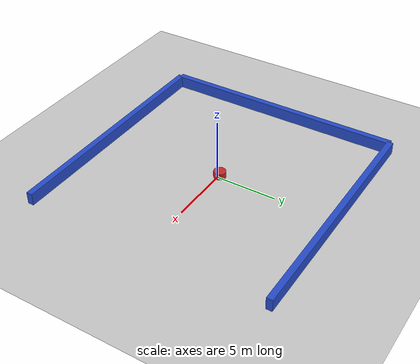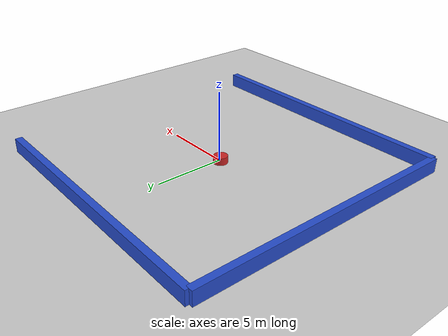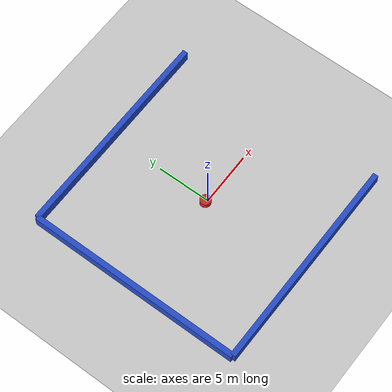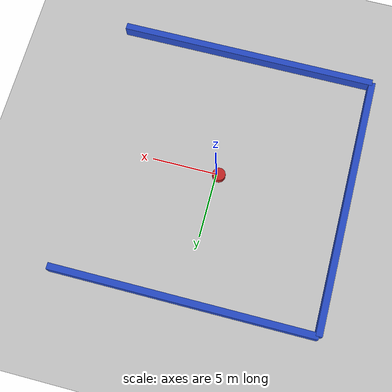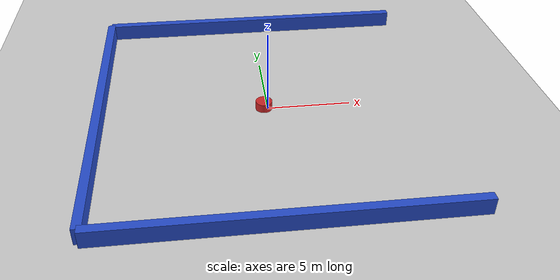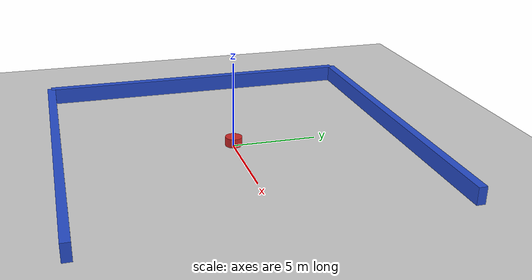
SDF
<?xml version="1.0" ?>
<sdf version="1.6">
   <world name="default">
    <model name="ground_plane">
      <static>1</static>
      <link name="link">
        <collision name="collision">
          <geometry><plane><normal>0 0 1</normal><size>100 100</size></plane></geometry>
          <surface><friction><ode><mu>100</mu><mu2>50</mu2></ode><torsional><ode/></torsional></friction><contact><ode/></contact></surface>
        </collision>
        <visual name="visual">
          <cast_shadows>0</cast_shadows>
          <geometry><plane><normal>0 0 1</normal><size>100 100</size></plane></geometry>
          <material><ambient>0.8 0.8 0.8 1</ambient><diffuse>0.8 0.8 0.8 1</diffuse><specular>0.01 0.01 0.01 1</specular></material>
        </visual>
      </link>
    </model>
    <light name="sun" type="directional">
      <cast_shadows>1</cast_shadows>
      <pose>0 0 10 0 0 0</pose>
      <diffuse>1 1 1 1</diffuse>
      <specular>0.1 0.1 0.1 1</specular>
      <attenuation><range>1000</range><constant>0.9</constant><linear>0.01</linear><quadratic>0.001</quadratic></attenuation>
      <direction>-0.5 0.5 -1</direction>
    </light>

    <model name='easylibobs_195'>
      <static>1</static>
      <pose frame=''>-0.225000 0.075000 0.000000 0.000000 0.000000 0.000000</pose>
      <link name='link'>
        <inertial>
          <mass>1</mass>
          <inertia>
            <ixx>0.145833</ixx>
            <ixy>0</ixy>
            <ixz>0</ixz>
            <iyy>0.145833</iyy>
            <iyz>0</iyz>
            <izz>0.125</izz>
          </inertia>
        </inertial>
        <collision name='collision'>
           <geometry>
            <cylinder>
                <radius>0.5000</radius>
                 <length> 1 </length>
            </cylinder>
          </geometry>
           <surface>
            <contact>
              <ode/>
            </contact>
            <bounce/>
            <friction>
              <torsional>
                <ode/>
              </torsional>
              <ode/>
            </friction>
          </surface>
        </collision>
        <visual name='visual'>
           <geometry>
            <cylinder>
                <radius>0.5000</radius>
                 <length> 1 </length>
            </cylinder>
          </geometry>
          <material>
            <script>
              <name>Gazebo/Red</name>
              <uri>file://media/materials/scripts/gazebo.material</uri>
            </script>
          </material>
        </visual>
        <self_collide>0</self_collide>
        <kinematic>0</kinematic>
        <gravity>1</gravity>
      </link>
      <plugin name='easylibobs_195' filename='easylibobs_195.so'/>
    </model>

    <model name='easylibobs_2'>
      <static>1</static>
      <pose frame=''>-0.225000 0.075000 0.000000 0.000000 0.000000 0.000000</pose>
      <link name='link'>
        <inertial>
          <mass>1</mass>
          <inertia>
            <ixx>0.145833</ixx>
            <ixy>0</ixy>
            <ixz>0</ixz>
            <iyy>0.145833</iyy>
            <iyz>0</iyz>
            <izz>0.125</izz>
          </inertia>
        </inertial>
        <collision name='collision'>
           <geometry>
            <cylinder>
                <radius>0.5000</radius>
                 <length> 1 </length>
            </cylinder>
          </geometry>
           <surface>
            <contact>
              <ode/>
            </contact>
            <bounce/>
            <friction>
              <torsional>
                <ode/>
              </torsional>
              <ode/>
            </friction>
          </surface>
        </collision>
        <visual name='visual'>
           <geometry>
            <cylinder>
                <radius>0.5000</radius>
                 <length> 1 </length>
            </cylinder>
          </geometry>
          <material>
            <script>
              <name>Gazebo/Red</name>
              <uri>file://media/materials/scripts/gazebo.material</uri>
            </script>
          </material>
        </visual>
        <self_collide>0</self_collide>
        <kinematic>0</kinematic>
        <gravity>1</gravity>
      </link>
      <plugin name='easylibobs_2' filename='easylibobs_2.so'/>
    </model>

    <model name='easylibobs_186'>
      <static>1</static>
      <pose frame=''>-0.225000 0.075000 0.000000 0.000000 0.000000 0.000000</pose>
      <link name='link'>
        <inertial>
          <mass>1</mass>
          <inertia>
            <ixx>0.145833</ixx>
            <ixy>0</ixy>
            <ixz>0</ixz>
            <iyy>0.145833</iyy>
            <iyz>0</iyz>
            <izz>0.125</izz>
          </inertia>
        </inertial>
        <collision name='collision'>
           <geometry>
            <cylinder>
                <radius>0.5000</radius>
                 <length> 1 </length>
            </cylinder>
          </geometry>
           <surface>
            <contact>
              <ode/>
            </contact>
            <bounce/>
            <friction>
              <torsional>
                <ode/>
              </torsional>
              <ode/>
            </friction>
          </surface>
        </collision>
        <visual name='visual'>
           <geometry>
            <cylinder>
                <radius>0.5000</radius>
                 <length> 1 </length>
            </cylinder>
          </geometry>
          <material>
            <script>
              <name>Gazebo/Red</name>
              <uri>file://media/materials/scripts/gazebo.material</uri>
            </script>
          </material>
        </visual>
        <self_collide>0</self_collide>
        <kinematic>0</kinematic>
        <gravity>1</gravity>
      </link>
      <plugin name='easylibobs_186' filename='easylibobs_186.so'/>
    </model>

    <model name='easylibobs_198'>
      <static>1</static>
      <pose frame=''>-0.225000 0.075000 0.000000 0.000000 0.000000 0.000000</pose>
      <link name='link'>
        <inertial>
          <mass>1</mass>
          <inertia>
            <ixx>0.145833</ixx>
            <ixy>0</ixy>
            <ixz>0</ixz>
            <iyy>0.145833</iyy>
            <iyz>0</iyz>
            <izz>0.125</izz>
          </inertia>
        </inertial>
        <collision name='collision'>
           <geometry>
            <cylinder>
                <radius>0.5000</radius>
                 <length> 1 </length>
            </cylinder>
          </geometry>
           <surface>
            <contact>
              <ode/>
            </contact>
            <bounce/>
            <friction>
              <torsional>
                <ode/>
              </torsional>
              <ode/>
            </friction>
          </surface>
        </collision>
        <visual name='visual'>
           <geometry>
            <cylinder>
                <radius>0.5000</radius>
                 <length> 1 </length>
            </cylinder>
          </geometry>
          <material>
            <script>
              <name>Gazebo/Red</name>
              <uri>file://media/materials/scripts/gazebo.material</uri>
            </script>
          </material>
        </visual>
        <self_collide>0</self_collide>
        <kinematic>0</kinematic>
        <gravity>1</gravity>
      </link>
      <plugin name='easylibobs_198' filename='easylibobs_198.so'/>
    </model>

    <model name='easylibobs_197'>
      <static>1</static>
      <pose frame=''>-0.225000 0.075000 0.000000 0.000000 0.000000 0.000000</pose>
      <link name='link'>
        <inertial>
          <mass>1</mass>
          <inertia>
            <ixx>0.145833</ixx>
            <ixy>0</ixy>
            <ixz>0</ixz>
            <iyy>0.145833</iyy>
            <iyz>0</iyz>
            <izz>0.125</izz>
          </inertia>
        </inertial>
        <collision name='collision'>
           <geometry>
            <cylinder>
                <radius>0.5000</radius>
                 <length> 1 </length>
            </cylinder>
          </geometry>
           <surface>
            <contact>
              <ode/>
            </contact>
            <bounce/>
            <friction>
              <torsional>
                <ode/>
              </torsional>
              <ode/>
            </friction>
          </surface>
        </collision>
        <visual name='visual'>
           <geometry>
            <cylinder>
                <radius>0.5000</radius>
                 <length> 1 </length>
            </cylinder>
          </geometry>
          <material>
            <script>
              <name>Gazebo/Red</name>
              <uri>file://media/materials/scripts/gazebo.material</uri>
            </script>
          </material>
        </visual>
        <self_collide>0</self_collide>
        <kinematic>0</kinematic>
        <gravity>1</gravity>
      </link>
      <plugin name='easylibobs_197' filename='easylibobs_197.so'/>
    </model>

    <model name='easylibobs_46'>
      <static>1</static>
      <pose frame=''>-0.225000 0.075000 0.000000 0.000000 0.000000 0.000000</pose>
      <link name='link'>
        <inertial>
          <mass>1</mass>
          <inertia>
            <ixx>0.145833</ixx>
            <ixy>0</ixy>
            <ixz>0</ixz>
            <iyy>0.145833</iyy>
            <iyz>0</iyz>
            <izz>0.125</izz>
          </inertia>
        </inertial>
        <collision name='collision'>
           <geometry>
            <cylinder>
                <radius>0.5000</radius>
                 <length> 1 </length>
            </cylinder>
          </geometry>
           <surface>
            <contact>
              <ode/>
            </contact>
            <bounce/>
            <friction>
              <torsional>
                <ode/>
              </torsional>
              <ode/>
            </friction>
          </surface>
        </collision>
        <visual name='visual'>
           <geometry>
            <cylinder>
                <radius>0.5000</radius>
                 <length> 1 </length>
            </cylinder>
          </geometry>
          <material>
            <script>
              <name>Gazebo/Red</name>
              <uri>file://media/materials/scripts/gazebo.material</uri>
            </script>
          </material>
        </visual>
        <self_collide>0</self_collide>
        <kinematic>0</kinematic>
        <gravity>1</gravity>
      </link>
      <plugin name='easylibobs_46' filename='easylibobs_46.so'/>
    </model>

    <model name='easylibobs_110'>
      <static>1</static>
      <pose frame=''>-0.225000 0.075000 0.000000 0.000000 0.000000 0.000000</pose>
      <link name='link'>
        <inertial>
          <mass>1</mass>
          <inertia>
            <ixx>0.145833</ixx>
            <ixy>0</ixy>
            <ixz>0</ixz>
            <iyy>0.145833</iyy>
            <iyz>0</iyz>
            <izz>0.125</izz>
          </inertia>
        </inertial>
        <collision name='collision'>
           <geometry>
            <cylinder>
                <radius>0.5000</radius>
                 <length> 1 </length>
            </cylinder>
          </geometry>
           <surface>
            <contact>
              <ode/>
            </contact>
            <bounce/>
            <friction>
              <torsional>
                <ode/>
              </torsional>
              <ode/>
            </friction>
          </surface>
        </collision>
        <visual name='visual'>
           <geometry>
            <cylinder>
                <radius>0.5000</radius>
                 <length> 1 </length>
            </cylinder>
          </geometry>
          <material>
            <script>
              <name>Gazebo/Red</name>
              <uri>file://media/materials/scripts/gazebo.material</uri>
            </script>
          </material>
        </visual>
        <self_collide>0</self_collide>
        <kinematic>0</kinematic>
        <gravity>1</gravity>
      </link>
      <plugin name='easylibobs_110' filename='easylibobs_110.so'/>
    </model>

      <model name="back_wall">
      <static>1</static>\   <pose>-10 0 .5 0 0 0</pose>        <link name="box_link">

	<collision name='collision'>
            <geometry>
              <box>
                <size>.5 20 1</size>
              </box>
            </geometry>
           <surface>
            <contact>
              <ode/>
            </contact>
            <bounce/>
            <friction>
              <torsional>
                <ode/>
              </torsional>
              <ode/>
            </friction>
          </surface>
        </collision>

          <visual name="visual">
            <geometry>
              <box>
                <size>.5 20 1</size>
              </box>
            </geometry>
          <material>
                 <script>
                     <name>Gazebo/Blue</name>
                         <uri>file://media/materials/scripts/gazebo.material</uri>
                         </script>
                     </material>
          </visual>
        </link>
      </model>
      <model name="top_wall">
      <static>1</static>
       <pose>0 10 .5 0 0 0</pose>        <link name="box_link">

	<collision name='collision'>
           <geometry>
              <box>
                <size>20 .5 1</size>
              </box>
            </geometry>
           <surface>
            <contact>
              <ode/>
            </contact>
            <bounce/>
            <friction>
              <torsional>
                <ode/>
              </torsional>
              <ode/>
            </friction>
          </surface>
        </collision>
          <visual name="visual">
            <geometry>
              <box>
                <size>20 .5 1</size>
              </box>
            </geometry>
          <material>
                 <script>
                     <name>Gazebo/Blue</name>
                         <uri>file://media/materials/scripts/gazebo.material</uri>
                         </script>
                     </material>
          </visual>
        </link>
      </model>
      <model name="bottom_wall">
      <static>1</static>
       <pose>0 -10 .5 0 0 0</pose>        <link name="box_link">
	<collision name='collision'>
            <geometry>
              <box>
                <size>20 .5 1</size>
              </box>
            </geometry>
           <surface>
            <contact>
              <ode/>
            </contact>
            <bounce/>
            <friction>
              <torsional>
                <ode/>
              </torsional>
              <ode/>
            </friction>
          </surface>
        </collision>
          <visual name="visual">
            <geometry>
              <box>
                <size>20 .5 1</size>
              </box>
            </geometry>
          <material>
                 <script>
                     <name>Gazebo/Blue</name>
                         <uri>file://media/materials/scripts/gazebo.material</uri>
                         </script>
                     </material>
          </visual>
        </link>
      </model>
   </world>
</sdf>
